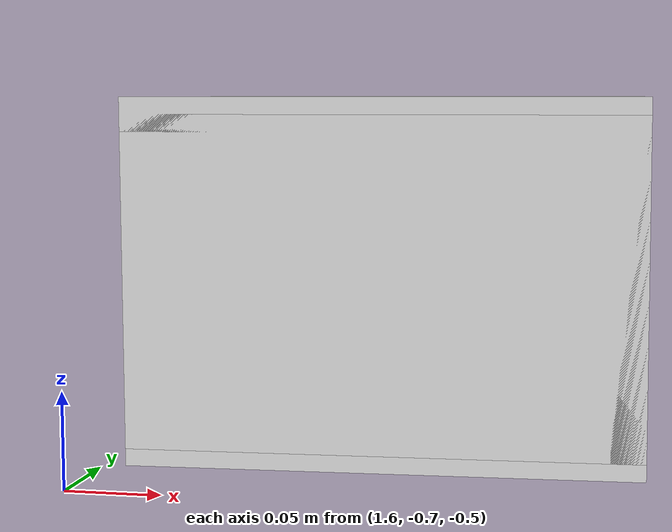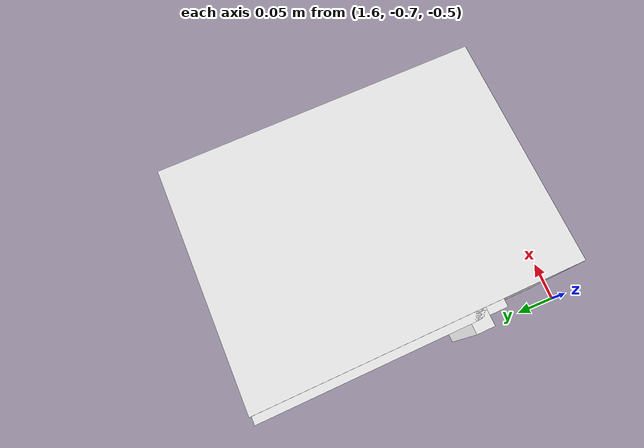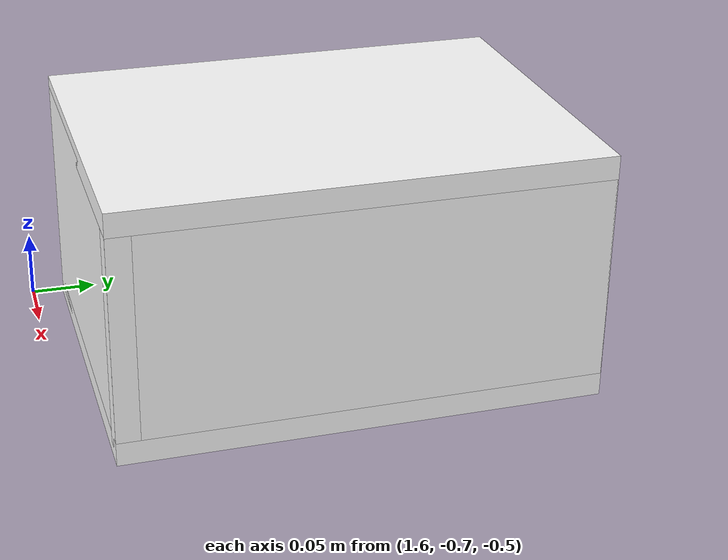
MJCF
<mujoco model="cabinet">
    <compiler angle="radian" eulerseq='zxy' />
    <option gravity = "0 0 0" />
    <option>
        <flag contact = "disable"/>
    </option>
    <statistic	extent="1.0" center="0.0 0.0 0.0"/>
    <visual>
        <map fogstart="3" fogend="5" force="0.1" znear=" 0.100000 " zfar=" 12.000000 "/>
    </visual>
    <size njmax="500" nconmax="100" />
    <actuator>
        <velocity joint="bottom_left_hinge" name="viva_revolution" kv='10'></velocity>
    </actuator>
    <asset>
        <texture builtin="flat" name="tabletex" height="32" width="32" rgb1="1 1 1" type="cube"></texture>
        <texture builtin="flat" name="objtex" height="32" width="32" rgb1="1 1 1" type="cube"></texture>
        <texture builtin="flat" name="handletex" height="32" width="32" rgb1="1 1 1" type="cube"></texture>
        <texture builtin="flat" name="wallpaper" height="32" width="32" rgb1="1 0 0" type="cube"></texture>
        <texture builtin="flat" name="kp" height="32" width="32" rgb1="1 1 1" type="cube"></texture>
        <material name="geomTable" shininess="0.03" specular="0.75" texture="tabletex"></material>
        <material name="geomObj" shininess="0.03" specular="0.75" texture="objtex"></material>
        <material name="geomHandle" shininess="0.03" specular="0.75" texture="handletex"></material>
        <material name="ax" shininess="0.03" specular="0.75" texture="wallpaper"></material>
        <material name="bg" shininess="0.03" specular="0.75" texture="wallpaper"></material>
        <material name="geomKeypad" shininess="0.03" specular="0.75" texture="kp"></material>
    </asset>
    <worldbody>
        <body name="cabinet_bottom" pos= " 1.748916 -0.497930 -0.482907 "  quat= " -0.014861 0.000000 0.000000 0.999890" >
            <inertial pos="0 0 0" mass="1" diaginertia="1 1 1" />
            <geom size= " 0.130454 0.175594 0.008662 "  type="box" material="geomObj" name="b"/>
            <body name="cabinet_left" pos= " 0.000000 -0.166932 0.084321 " >
                <inertial pos="0 0 0" mass="1" diaginertia="1 1 1" />
                <geom size= " 0.130454 0.008662 0.084321 "  type="box" material="geomObj" name="c" />
            </body>
            <body name="cabinet_right" pos= " 0.000000 0.166932 0.084321 " >
                <inertial pos="0 0 0" mass="1" diaginertia="1 1 1" />
                <geom size= " 0.130454 0.008662 0.084321 "  type="box" material="geomObj" name="d" />
            </body>
            <body name="cabinet_top" pos= " 0.000000 0.000000 0.168641 " >
                <inertial pos="0 0 0" mass="1" diaginertia="1 1 1" />
                <geom size= " 0.130454 0.175594 0.008662 "  type="box" material="geomObj" name="e"/>
            </body>
            <body name="cabinet_back" pos= " -0.121792 0.000000 0.084321 "  >
                <inertial pos="0 0 0" mass="1" diaginertia="1 1 1" />
                <geom size= " 0.008662 0.175594 0.084321 "  type="box" material="geomObj" name="f" />
            </body>
            <body name="cabinet_keypad" pos= " 0.008662 0.130695 0.084321 " >
                <inertial pos="0 0 0" mass="1" diaginertia="1 1 1" />
                <geom size= " 0.121792 0.043898 0.075658 "  type="box" material="geomKeypad" name="keypizzlemynizzle" />
            </body>
            <body name="cabinet_left_hinge" pos= " 0.130454 -0.175594 0.084321 " >
                <inertial pos= " 0.000000 0.131695 0.000000 "  mass="1" diaginertia="1 1 1" />
                <joint name="bottom_left_hinge" type="hinge" pos="0 0 0" axis="0 0 1" limited="true" range= "-2.3 0"  />
                <geom size= " 0.008662 0.131695 0.084321 "  pos= " 0.000000 0.131695 0.000000 "  type="box" material="geomObj" name="g"/>
                <body name="handle_link" pos= " 0.010000 0.233391 0.000000 " >
                    <inertial pos="0 0 0" mass="1" diaginertia="1 1 1" />
                    <geom size= " 0.010000 0.010000 0.084321 "  type="box" material="geomHandle" name="h"/>
                </body>
            </body>
        </body>
        <body name="external_camera_body_0" pos="0.0 0 0.00" >
            <camera euler="-1.57 1.57 0.0" fovy=" 54.280851 " name="external_camera_0" pos="0.0 0 0"></camera>
            <inertial pos= " 0.00 0.0 0.000000 " mass="1" diaginertia="1 1 1" />
            <joint name="cam_j" pos="0.0 0 0" axis = "1 0 0" type="free" />
        </body>
    </worldbody>
</mujoco>
